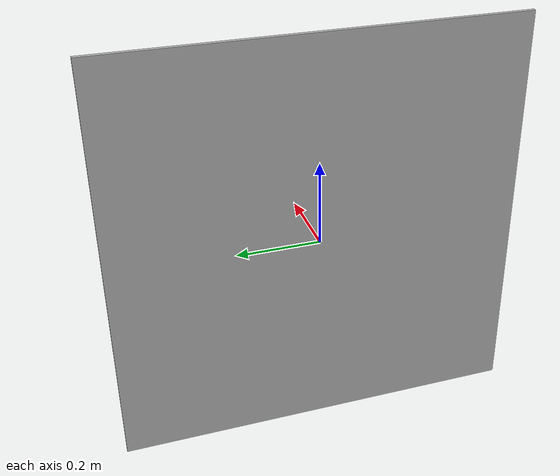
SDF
<?xml version="1.0"?>
<sdf version="1.7">

  <!-- world->ghost_body_y->ghost_body_z_sphere-->
  <model name="box_yz">
    <!-- Ghost body of negligible mass. -->
    <link name="ghost_body_y">
      <inertial>
        <mass>1.0e-6</mass>
        <inertia>
          <ixx>1.0e-6</ixx>
          <ixy>0</ixy>
          <ixz>0</ixz>
          <iyy>1.0e-6</iyy>
          <iyz>0</iyz>
          <izz>1.0e-6</izz>
        </inertia>
      </inertial>
    </link>

    <link name="ghost_body_z">
      <inertial>
        <mass>1.0e-6</mass>
        <inertia>
          <ixx>1.0e-6</ixx>
          <ixy>0</ixy>
          <ixz>0</ixz>
          <iyy>1.0e-6</iyy>
          <iyz>0</iyz>
          <izz>1.0e-6</izz>
        </inertia>
      </inertial>
    </link>

    <joint name="y_slider" type="prismatic">
      <parent>world</parent>
      <child>ghost_body_y</child>
      <axis>
        <xyz>0 1 0</xyz>
        <!-- Drake attaches an actuator to all joints with a non-zero effort
             limit. We do not want an actuator for this joint. -->
        <limit>
          <effort>0</effort>
        </limit>
      </axis>
    </joint>

    <joint name="z_slider" type="prismatic">
      <parent>ghost_body_y</parent>
      <child>ghost_body_z</child>
      <axis>
        <xyz>0 0 1</xyz>
        <!-- Drake attaches an actuator to all joints with a non-zero effort
             limit. We do not want an actuator for this joint and therefore we
             set a zero effort limit. -->
        <limit>
          <effort>0</effort>
        </limit>
      </axis>
    </joint>

    <joint name="rotation" type="revolute">
      <parent>ghost_body_z</parent>
      <child>box</child>
      <axis>
        <xyz>1 0 0</xyz>
        <!-- Drake attaches an actuator to all joints with a non-zero effort
             limit. We do not want an actuator for this joint and therefore we
             set a zero effort limit. -->
        <limit>
          <effort>0</effort>
        </limit>
      </axis>
    </joint>

    <!-- The model for a solid box of uniform density. -->
    <link name="box">
      <inertial>
        <mass>1.0</mass>
        <inertia>
          <ixx>0.166666666666667</ixx>
          <ixy>0</ixy>
          <ixz>0</ixz>
          <iyy>0.166666666666667</iyy>
          <iyz>0</iyz>
          <izz>0.166666666666667</izz>
        </inertia>
      </inertial>

      <visual name="box_visual">
        <geometry>
          <box>
            <size>0.01 0.999 0.999</size>
          </box>
        </geometry>
      </visual>

      <collision name="collision">
        <geometry>
          <box>
            <size>0.01 0.999 0.999</size>
          </box>
        </geometry>
        <surface>
          <friction>
            <ode>
              <mu>0.5</mu>
              <mu2>0.5</mu2>
            </ode>
          </friction>
        </surface>
      </collision>

      <collision name="lower_left_corner">
        <pose> 0 -0.5 -0.5 0 0 0</pose>
        <geometry>
          <sphere>
            <radius>1e-7</radius>
          </sphere>
        </geometry>
      </collision>

      <collision name="lower_right_corner">
        <pose> 0 0.5 -0.5 0 0 0 </pose>
        <geometry>
          <sphere>
            <radius>1e-7</radius>
          </sphere>
        </geometry>
      </collision>

    </link>
  </model>
</sdf>
